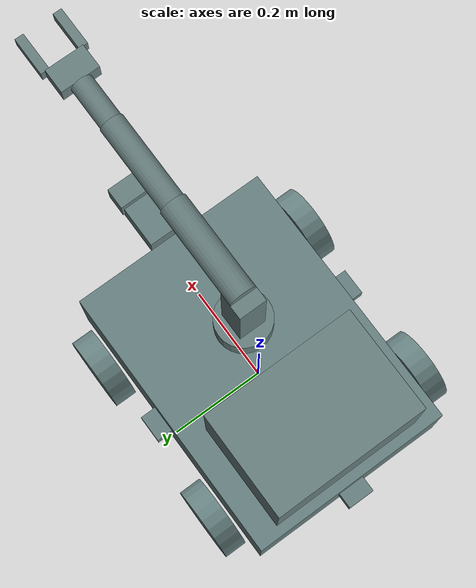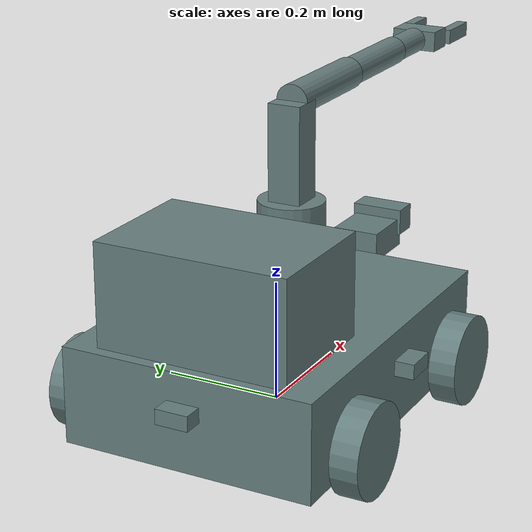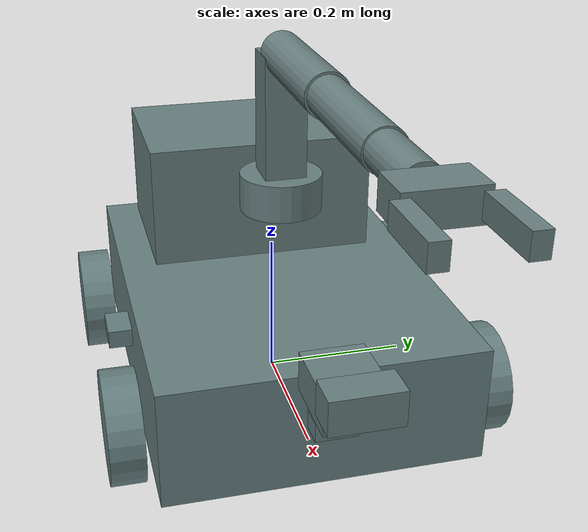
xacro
<?xml version="1.0"?>
<robot xmlns:xacro="http://www.ros.org/wiki/xacro" name="fixi_bottle">
  <xacro:property name="base_length" value="0.58"/>
  <xacro:property name="base_width" value="0.42"/>
  <xacro:property name="base_height" value="0.16"/>
  <xacro:property name="wheel_radius" value="0.075"/>
  <xacro:property name="wheel_width" value="0.045"/>
  <xacro:property name="wheel_y" value="${base_width / 2.0 + wheel_width / 2.0 + 0.01}"/>
  <xacro:property name="wheel_x" value="-0.04"/>
  <xacro:property name="wheel_z" value="0.05"/>
  <xacro:property name="caster_radius" value="0.035"/>
  <xacro:property name="arm_base_z" value="${base_height + 0.035}"/>

  <xacro:macro name="box_inertial" params="mass x y z">
    <inertial>
      <mass value="${mass}"/>
      <origin xyz="0 0 0" rpy="0 0 0"/>
      <inertia
        ixx="${mass * (y * y + z * z) / 12.0}"
        ixy="0"
        ixz="0"
        iyy="${mass * (x * x + z * z) / 12.0}"
        iyz="0"
        izz="${mass * (x * x + y * y) / 12.0}"/>
    </inertial>
  </xacro:macro>

  <xacro:macro name="cylinder_inertial" params="mass radius length">
    <inertial>
      <mass value="${mass}"/>
      <origin xyz="0 0 0" rpy="0 0 0"/>
      <inertia
        ixx="${mass * (3.0 * radius * radius + length * length) / 12.0}"
        ixy="0"
        ixz="0"
        iyy="${mass * (3.0 * radius * radius + length * length) / 12.0}"
        iyz="0"
        izz="${mass * radius * radius / 2.0}"/>
    </inertial>
  </xacro:macro>

  <xacro:macro name="ultrasonic_sensor" params="name x y z yaw">
    <link name="${name}_ultrasonic_link">
      <visual>
      <material name="mat_1"><color rgba="0.401 0.5 0.5 1.0"/></material>
        <origin xyz="0 0 0" rpy="0 0 0"/>
        <geometry>
          <box size="0.035 0.055 0.025"/>
        </geometry>

      </visual>
      <collision>
        <origin xyz="0 0 0" rpy="0 0 0"/>
        <geometry>
          <box size="0.035 0.055 0.025"/>
        </geometry>
      </collision>
      <xacro:box_inertial mass="0.05" x="0.035" y="0.055" z="0.025"/>
    </link>

    <joint name="${name}_ultrasonic_joint" type="fixed">
      <parent link="base_link"/>
      <child link="${name}_ultrasonic_link"/>
      <origin xyz="${x} ${y} ${z}" rpy="0 0 ${yaw}"/>
    </joint>

    <link name="${name}_ultrasonic_frame"/>

    <joint name="${name}_ultrasonic_frame_joint" type="fixed">
      <parent link="${name}_ultrasonic_link"/>
      <child link="${name}_ultrasonic_frame"/>
      <origin xyz="0.025 0 0" rpy="0 0 0"/>
    </joint>
  </xacro:macro>

  <link name="base_footprint"/>

  <joint name="base_footprint_to_base_link" type="fixed">
    <parent link="base_footprint"/>
    <child link="base_link"/>
    <origin xyz="0 0 ${base_height / 2.0}" rpy="0 0 0"/>
  </joint>

  <link name="base_link">
    <visual>
      <material name="mat_2"><color rgba="0.402 0.5 0.5 1.0"/></material>
      <origin xyz="0 0 0" rpy="0 0 0"/>
      <geometry>
        <box size="${base_length} ${base_width} ${base_height}"/>
      </geometry>

    </visual>
    <collision>
      <origin xyz="0 0 0" rpy="0 0 0"/>
      <geometry>
        <box size="${base_length} ${base_width} ${base_height}"/>
      </geometry>
    </collision>
    <xacro:box_inertial mass="8.0" x="${base_length}" y="${base_width}" z="${base_height}"/>
  </link>

  <xacro:property name="wheel_x_offset" value="0.18"/>

  <xacro:macro name="drive_wheel" params="prefix x_reflect y_reflect mat_id">
    <link name="${prefix}_wheel_link">
      <visual>
        <material name="mat_${mat_id}"><color rgba="0.4 0.5 0.5 1.0"/></material>
        <origin xyz="0 0 0" rpy="1.5708 0 0"/>
        <geometry>
          <cylinder radius="${wheel_radius}" length="${wheel_width}"/>
        </geometry>
      </visual>
      <collision>
        <origin xyz="0 0 0" rpy="1.5708 0 0"/>
        <geometry>
          <cylinder radius="${wheel_radius}" length="${wheel_width}"/>
        </geometry>
      </collision>
      <xacro:cylinder_inertial mass="0.6" radius="${wheel_radius}" length="${wheel_width}"/>
    </link>

    <joint name="${prefix}_wheel_joint" type="continuous">
      <parent link="base_link"/>
      <child link="${prefix}_wheel_link"/>
      <origin xyz="${wheel_x_offset * x_reflect} ${wheel_y * y_reflect} ${-base_height / 2.0 + wheel_z}" rpy="0 0 0"/>
      <axis xyz="0 1 0"/>
      <limit effort="100.0" velocity="20.0"/>
    </joint>
  </xacro:macro>

  <xacro:drive_wheel prefix="front_left" x_reflect="1" y_reflect="1" mat_id="101"/>
  <xacro:drive_wheel prefix="front_right" x_reflect="1" y_reflect="-1" mat_id="102"/>
  <xacro:drive_wheel prefix="rear_left" x_reflect="-1" y_reflect="1" mat_id="103"/>
  <xacro:drive_wheel prefix="rear_right" x_reflect="-1" y_reflect="-1" mat_id="104"/>

  <link name="camera_mount_link">
    <visual>
      <material name="mat_6"><color rgba="0.406 0.5 0.5 1.0"/></material>
      <origin xyz="0 0 0" rpy="0 0 0"/>
      <geometry>
        <box size="0.10 0.08 0.05"/>
      </geometry>

    </visual>
    <collision>
      <origin xyz="0 0 0" rpy="0 0 0"/>
      <geometry>
        <box size="0.10 0.08 0.05"/>
      </geometry>
    </collision>
    <xacro:box_inertial mass="0.25" x="0.10" y="0.08" z="0.05"/>
  </link>

  <joint name="camera_mount_joint" type="fixed">
    <parent link="base_link"/>
    <child link="camera_mount_link"/>
    <origin xyz="0.34 0 0.09" rpy="0 0 0"/>
  </joint>

  <link name="camera_link">
    <visual>
      <material name="mat_7"><color rgba="0.40700000000000003 0.5 0.5 1.0"/></material>
      <origin xyz="0 0 0" rpy="0 0 0"/>
      <geometry>
        <box size="0.045 0.09 0.045"/>
      </geometry>

    </visual>
    <collision>
      <origin xyz="0 0 0" rpy="0 0 0"/>
      <geometry>
        <box size="0.045 0.09 0.045"/>
      </geometry>
    </collision>
    <xacro:box_inertial mass="0.15" x="0.045" y="0.09" z="0.045"/>
  </link>

  <joint name="camera_joint" type="fixed">
    <parent link="camera_mount_link"/>
    <child link="camera_link"/>
    <origin xyz="0.06 0 0.02" rpy="0 0 0"/>
  </joint>

  <link name="camera_optical_frame"/>

  <joint name="camera_optical_joint" type="fixed">
    <parent link="camera_link"/>
    <child link="camera_optical_frame"/>
    <origin xyz="0.025 0 0" rpy="-1.5708 0 -1.5708"/>
  </joint>

  <xacro:ultrasonic_sensor
    name="front"
    x="${base_length / 2.0 + 0.015}"
    y="0"
    z="0.02"
    yaw="0"/>
  <xacro:ultrasonic_sensor
    name="left"
    x="0.02"
    y="${base_width / 2.0 + 0.015}"
    z="0.02"
    yaw="1.5708"/>
  <xacro:ultrasonic_sensor
    name="right"
    x="0.02"
    y="${-base_width / 2.0 - 0.015}"
    z="0.02"
    yaw="-1.5708"/>
  <xacro:ultrasonic_sensor
    name="rear"
    x="${-base_length / 2.0 - 0.015}"
    y="0"
    z="0.02"
    yaw="3.1416"/>

  <link name="storage_bin_link">
    <visual>
      <material name="mat_8"><color rgba="0.40800000000000003 0.5 0.5 1.0"/></material>
      <origin xyz="0 0 0" rpy="0 0 0"/>
      <geometry>
        <box size="0.22 0.32 0.18"/>
      </geometry>

    </visual>
    <collision>
      <origin xyz="0 0 0" rpy="0 0 0"/>
      <geometry>
        <box size="0.22 0.32 0.18"/>
      </geometry>
    </collision>
    <xacro:box_inertial mass="0.8" x="0.22" y="0.32" z="0.18"/>
  </link>

  <joint name="storage_bin_joint" type="fixed">
    <parent link="base_link"/>
    <child link="storage_bin_link"/>
    <origin xyz="-0.16 0 0.16" rpy="0 0 0"/>
  </joint>

  <link name="arm_base_link">
    <visual>
      <material name="mat_9"><color rgba="0.40900000000000003 0.5 0.5 1.0"/></material>
      <origin xyz="0 0 0.025" rpy="0 0 0"/>
      <geometry>
        <cylinder radius="0.055" length="0.05"/>
      </geometry>

    </visual>
    <collision>
      <origin xyz="0 0 0.025" rpy="0 0 0"/>
      <geometry>
        <cylinder radius="0.055" length="0.05"/>
      </geometry>
    </collision>
    <xacro:cylinder_inertial mass="0.4" radius="0.055" length="0.05"/>
  </link>

  <joint name="arm_mount_joint" type="fixed">
    <parent link="base_link"/>
    <child link="arm_base_link"/>
    <origin xyz="0.05 0 ${arm_base_z}" rpy="0 0 0"/>
  </joint>

  <link name="arm_shoulder_link">
    <visual>
      <material name="mat_10"><color rgba="0.41000000000000003 0.5 0.5 1.0"/></material>
      <origin xyz="0 0 0.08" rpy="0 0 0"/>
      <geometry>
        <box size="0.055 0.055 0.16"/>
      </geometry>

    </visual>
    <collision>
      <origin xyz="0 0 0.08" rpy="0 0 0"/>
      <geometry>
        <box size="0.055 0.055 0.16"/>
      </geometry>
    </collision>
    <xacro:box_inertial mass="0.35" x="0.055" y="0.055" z="0.16"/>
  </link>

  <joint name="arm_joint_1_yaw" type="revolute">
    <parent link="arm_base_link"/>
    <child link="arm_shoulder_link"/>
    <origin xyz="0 0 0.05" rpy="0 0 0"/>
    <axis xyz="0 0 1"/>
    <limit lower="-3.1416" upper="3.1416" effort="10.0" velocity="1.5"/>
  </joint>

  <link name="arm_upper_link">
    <visual>
      <material name="mat_11"><color rgba="0.41100000000000003 0.5 0.5 1.0"/></material>
      <origin xyz="0.10 0 0" rpy="0 1.5708 0"/>
      <geometry>
        <cylinder radius="0.027" length="0.20"/>
      </geometry>

    </visual>
    <collision>
      <origin xyz="0.10 0 0" rpy="0 1.5708 0"/>
      <geometry>
        <cylinder radius="0.027" length="0.20"/>
      </geometry>
    </collision>
    <xacro:cylinder_inertial mass="0.3" radius="0.027" length="0.20"/>
  </link>

  <joint name="arm_joint_2_shoulder" type="revolute">
    <parent link="arm_shoulder_link"/>
    <child link="arm_upper_link"/>
    <origin xyz="0 0 0.16" rpy="0 0 0"/>
    <axis xyz="0 1 0"/>
    <limit lower="-1.2" upper="1.4" effort="10.0" velocity="1.2"/>
  </joint>

  <link name="arm_forearm_link">
    <visual>
      <material name="mat_12"><color rgba="0.41200000000000003 0.5 0.5 1.0"/></material>
      <origin xyz="0.09 0 0" rpy="0 1.5708 0"/>
      <geometry>
        <cylinder radius="0.024" length="0.18"/>
      </geometry>

    </visual>
    <collision>
      <origin xyz="0.09 0 0" rpy="0 1.5708 0"/>
      <geometry>
        <cylinder radius="0.024" length="0.18"/>
      </geometry>
    </collision>
    <xacro:cylinder_inertial mass="0.25" radius="0.024" length="0.18"/>
  </link>

  <joint name="arm_joint_3_elbow" type="revolute">
    <parent link="arm_upper_link"/>
    <child link="arm_forearm_link"/>
    <origin xyz="0.20 0 0" rpy="0 0 0"/>
    <axis xyz="0 1 0"/>
    <limit lower="-1.6" upper="1.6" effort="8.0" velocity="1.2"/>
  </joint>

  <link name="arm_wrist_link">
    <visual>
      <material name="mat_13"><color rgba="0.41300000000000003 0.5 0.5 1.0"/></material>
      <origin xyz="0.045 0 0" rpy="0 1.5708 0"/>
      <geometry>
        <cylinder radius="0.022" length="0.09"/>
      </geometry>

    </visual>
    <collision>
      <origin xyz="0.045 0 0" rpy="0 1.5708 0"/>
      <geometry>
        <cylinder radius="0.022" length="0.09"/>
      </geometry>
    </collision>
    <xacro:cylinder_inertial mass="0.18" radius="0.022" length="0.09"/>
  </link>

  <joint name="arm_joint_4_wrist" type="revolute">
    <parent link="arm_forearm_link"/>
    <child link="arm_wrist_link"/>
    <origin xyz="0.18 0 0" rpy="0 0 0"/>
    <axis xyz="0 1 0"/>
    <limit lower="-1.57" upper="1.57" effort="5.0" velocity="1.5"/>
  </joint>

  <link name="gripper_base_link">
    <visual>
      <material name="mat_14"><color rgba="0.41400000000000003 0.5 0.5 1.0"/></material>
      <origin xyz="0.025 0 0" rpy="0 0 0"/>
      <geometry>
        <box size="0.05 0.08 0.035"/>
      </geometry>

    </visual>
    <collision>
      <origin xyz="0.025 0 0" rpy="0 0 0"/>
      <geometry>
        <box size="0.05 0.08 0.035"/>
      </geometry>
    </collision>
    <xacro:box_inertial mass="0.12" x="0.05" y="0.08" z="0.035"/>
  </link>

  <joint name="gripper_base_joint" type="fixed">
    <parent link="arm_wrist_link"/>
    <child link="gripper_base_link"/>
    <origin xyz="0.09 0 0" rpy="0 0 0"/>
  </joint>

  <link name="left_gripper_finger_link">
    <visual>
      <material name="mat_15"><color rgba="0.41500000000000004 0.5 0.5 1.0"/></material>
      <origin xyz="0.04 0 0" rpy="0 0 0"/>
      <geometry>
        <box size="0.08 0.018 0.025"/>
      </geometry>

    </visual>
    <collision>
      <origin xyz="0.04 0 0" rpy="0 0 0"/>
      <geometry>
        <box size="0.08 0.018 0.025"/>
      </geometry>
    </collision>
    <xacro:box_inertial mass="0.04" x="0.08" y="0.018" z="0.025"/>
  </link>

  <joint name="left_gripper_finger_joint" type="prismatic">
    <parent link="gripper_base_link"/>
    <child link="left_gripper_finger_link"/>
    <origin xyz="0.05 0.04 0" rpy="0 0 0"/>
    <axis xyz="0 1 0"/>
    <limit lower="0.0" upper="0.035" effort="2.0" velocity="0.05"/>
  </joint>

  <link name="right_gripper_finger_link">
    <visual>
      <material name="mat_16"><color rgba="0.41600000000000004 0.5 0.5 1.0"/></material>
      <origin xyz="0.04 0 0" rpy="0 0 0"/>
      <geometry>
        <box size="0.08 0.018 0.025"/>
      </geometry>

    </visual>
    <collision>
      <origin xyz="0.04 0 0" rpy="0 0 0"/>
      <geometry>
        <box size="0.08 0.018 0.025"/>
      </geometry>
    </collision>
    <xacro:box_inertial mass="0.04" x="0.08" y="0.018" z="0.025"/>
  </link>

  <joint name="right_gripper_finger_joint" type="prismatic">
    <parent link="gripper_base_link"/>
    <child link="right_gripper_finger_link"/>
    <origin xyz="0.05 -0.04 0" rpy="0 0 0"/>
    <axis xyz="0 -1 0"/>
    <limit lower="0.0" upper="0.035" effort="2.0" velocity="0.05"/>
    <mimic joint="left_gripper_finger_joint" multiplier="1.0" offset="0.0"/>
  </joint>

  <link name="gripper_tcp"/>

  <joint name="gripper_tcp_joint" type="fixed">
    <parent link="gripper_base_link"/>
    <child link="gripper_tcp"/>
    <origin xyz="0.14 0 0" rpy="0 0 0"/>
  </joint>

  <!-- Include Gazebo simulation settings -->
  <xacro:include filename="$(find fixi_description)/urdf/fixi.gazebo.xacro"/>
</robot>
